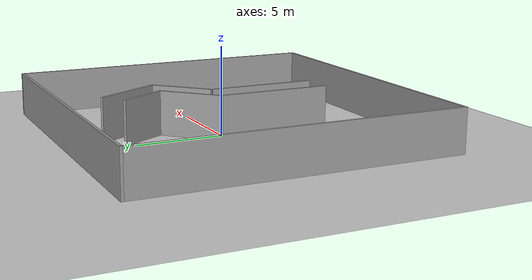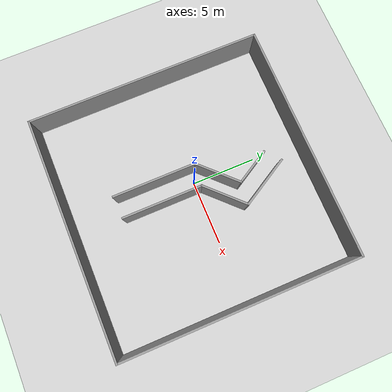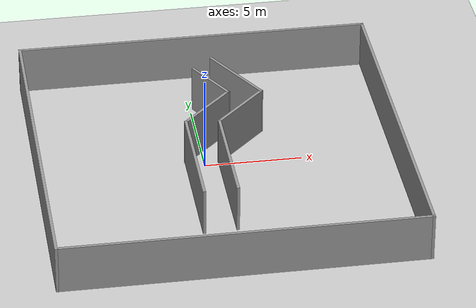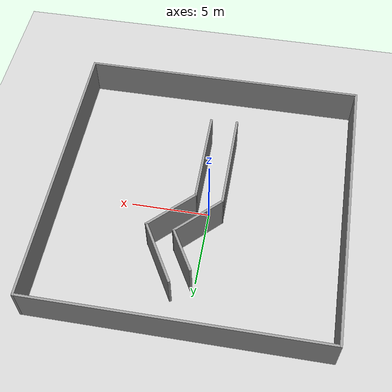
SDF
<sdf version="1.7">
 <world name="default">
  <light name="sun" type="directional">
   <pose>0 0 10 0 -0 0</pose>
   <diffuse>0.8 0.8 0.8 1</diffuse>
   <specular>0.2 0.2 0.2 1</specular>
   <attenuation>
    <range>1000</range>
    <constant>0.9</constant>
    <linear>0.01</linear>
    <quadratic>0.001</quadratic>
   </attenuation>
   <direction>-0.5 0.1 -0.9</direction>
   <spot><inner_angle>0</inner_angle><outer_angle>0</outer_angle><falloff>0</falloff></spot>
  </light>
  <model name="ground_plane">
   <static>1</static>
   <link name="link">
    <collision name="collision">
     <geometry><plane><normal>0 0 1</normal><size>100 100</size></plane></geometry>
     <surface>
      <contact><collide_bitmask>65535</collide_bitmask></contact>
      <friction><ode><mu>100</mu><mu2>50</mu2></ode></friction>
     </surface>
    </collision>
    <visual name="visual">
     <cast_shadows>0</cast_shadows>
     <geometry><plane><normal>0 0 1</normal><size>100 100</size></plane></geometry>
     <material>
      <script><uri>file://media/materials/scripts/gazebo.material</uri><name>Gazebo/Grey</name></script>
     </material>
    </visual>
   </link>
  </model>
  <gravity>0 0 -9.8</gravity>
  <magnetic_field>6e-06 2.3e-05 -4.2e-05</magnetic_field>
  <atmosphere type="adiabatic"/>
  <physics type="ode">
   <max_step_size>0.001</max_step_size>
   <real_time_factor>1</real_time_factor>
   <real_time_update_rate>1000</real_time_update_rate>
  </physics>
  <scene><ambient>0.4 0.4 0.4 1</ambient><background>0.7 0.7 0.7 1</background><shadows>1</shadows></scene>
  <spherical_coordinates>
   <surface_model>EARTH_WGS84</surface_model>
   <latitude_deg>0</latitude_deg>
   <longitude_deg>0</longitude_deg>
   <elevation>0</elevation>
   <heading_deg>0</heading_deg>
  </spherical_coordinates>
  <model name="thin_wall">
   <pose>0.591145 -0.536831 0 0 -0 0</pose>
   <link name="Wall_12">
    <collision name="Wall_12_Collision">
     <geometry><box><size>18.5 0.15 2.5</size></box></geometry>
     <pose>0 0 1.25 0 -0 0</pose>
    </collision>
    <visual name="Wall_12_Visual">
     <pose>0 0 1.25 0 -0 0</pose>
     <geometry><box><size>18.5 0.15 2.5</size></box></geometry>
     <material>
      <script><uri>file://media/materials/scripts/gazebo.material</uri><name>Gazebo/Grey</name></script>
      <ambient>1 1 1 1</ambient>
     </material>
     <meta><layer>0</layer></meta>
    </visual>
    <pose>-9.175 0 0 0 -0 -1.5708</pose>
   </link>
   <link name="Wall_13">
    <collision name="Wall_13_Collision">
     <geometry><box><size>18.5 0.15 2.5</size></box></geometry>
     <pose>0 0 1.25 0 -0 0</pose>
    </collision>
    <visual name="Wall_13_Visual">
     <pose>0 0 1.25 0 -0 0</pose>
     <geometry><box><size>18.5 0.15 2.5</size></box></geometry>
     <material>
      <script><uri>file://media/materials/scripts/gazebo.material</uri><name>Gazebo/Grey</name></script>
      <ambient>1 1 1 1</ambient>
     </material>
     <meta><layer>0</layer></meta>
    </visual>
    <pose>0 -9.175 0 0 -0 0</pose>
   </link>
   <link name="Wall_14">
    <collision name="Wall_14_Collision">
     <geometry><box><size>18.5 0.15 2.5</size></box></geometry>
     <pose>0 0 1.25 0 -0 0</pose>
    </collision>
    <visual name="Wall_14_Visual">
     <pose>0 0 1.25 0 -0 0</pose>
     <geometry><box><size>18.5 0.15 2.5</size></box></geometry>
     <material>
      <script><uri>file://media/materials/scripts/gazebo.material</uri><name>Gazebo/Grey</name></script>
      <ambient>1 1 1 1</ambient>
     </material>
     <meta><layer>0</layer></meta>
    </visual>
    <pose>9.175 0 0 0 -0 1.5708</pose>
   </link>
   <link name="Wall_15">
    <collision name="Wall_15_Collision">
     <geometry><box><size>18.5 0.15 2.5</size></box></geometry>
     <pose>0 0 1.25 0 -0 0</pose>
    </collision>
    <visual name="Wall_15_Visual">
     <pose>0 0 1.25 0 -0 0</pose>
     <geometry><box><size>18.5 0.15 2.5</size></box></geometry>
     <material>
      <script><uri>file://media/materials/scripts/gazebo.material</uri><name>Gazebo/Grey</name></script>
      <ambient>1 1 1 1</ambient>
     </material>
     <meta><layer>0</layer></meta>
    </visual>
    <pose>0 9.175 0 0 -0 3.14159</pose>
   </link>
   <link name="Wall_17">
    <collision name="Wall_17_Collision">
     <geometry><box><size>6.5 0.15 2.5</size></box></geometry>
     <pose>0 0 1.25 0 -0 0</pose>
    </collision>
    <visual name="Wall_17_Visual">
     <pose>0 0 1.25 0 -0 0</pose>
     <geometry><box><size>6.5 0.15 2.5</size></box></geometry>
     <material>
      <script><uri>file://media/materials/scripts/gazebo.material</uri><name>Gazebo/Grey</name></script>
      <ambient>1 1 1 1</ambient>
     </material>
     <meta><layer>0</layer></meta>
    </visual>
    <pose>-1.4946 -2.21882 0 0 -0 1.5708</pose>
   </link>
   <link name="Wall_18">
    <collision name="Wall_18_Collision">
     <geometry><box><size>3.75 0.15 2.5</size></box></geometry>
     <pose>0 0 1.25 0 -0 0</pose>
    </collision>
    <visual name="Wall_18_Visual">
     <pose>0 0 1.25 0 -0 0</pose>
     <geometry><box><size>3.75 0.15 2.5</size></box></geometry>
     <material>
      <script><uri>file://media/materials/scripts/gazebo.material</uri><name>Gazebo/Grey</name></script>
      <ambient>1 1 1 1</ambient>
     </material>
     <meta><layer>0</layer></meta>
    </visual>
    <pose>-0.221804 2.22897 0 0 -0 0.785398</pose>
   </link>
   <link name="Wall_19">
    <collision name="Wall_19_Collision">
     <geometry><box><size>3 0.15 2.5</size></box></geometry>
     <pose>0 0 1.25 0 -0 0</pose>
    </collision>
    <visual name="Wall_19_Visual">
     <pose>0 0 1.25 0 -0 0</pose>
     <geometry><box><size>3 0.15 2.5</size></box></geometry>
     <material>
      <script><uri>file://media/materials/scripts/gazebo.material</uri><name>Gazebo/Grey</name></script>
      <ambient>1 1 1 1</ambient>
     </material>
     <meta><layer>0</layer></meta>
    </visual>
    <pose>0.338488 4.73585 0 0 -0 2.0944</pose>
   </link>
   <link name="Wall_22">
    <collision name="Wall_22_Collision">
     <geometry><box><size>6.25 0.15 2.5</size></box></geometry>
     <pose>0 0 1.25 0 -0 0</pose>
    </collision>
    <visual name="Wall_22_Visual">
     <pose>0 0 1.25 0 -0 0</pose>
     <geometry><box><size>6.25 0.15 2.5</size></box></geometry>
     <material>
      <script><uri>file://media/materials/scripts/gazebo.material</uri><name>Gazebo/Grey</name></script>
      <ambient>1 1 1 1</ambient>
     </material>
     <meta><layer>0</layer></meta>
    </visual>
    <pose>0.204538 -2.26291 0 0 -0 1.5708</pose>
   </link>
   <link name="Wall_23">
    <collision name="Wall_23_Collision">
     <geometry><box><size>3.75 0.15 2.5</size></box></geometry>
     <pose>0 0 1.25 0 -0 0</pose>
    </collision>
    <visual name="Wall_23_Visual">
     <pose>0 0 1.25 0 -0 0</pose>
     <geometry><box><size>3.75 0.15 2.5</size></box></geometry>
     <material>
      <script><uri>file://media/materials/scripts/gazebo.material</uri><name>Gazebo/Grey</name></script>
      <ambient>1 1 1 1</ambient>
     </material>
     <meta><layer>0</layer></meta>
    </visual>
    <pose>1.47733 2.05988 0 0 -0 0.785398</pose>
   </link>
   <link name="Wall_24">
    <collision name="Wall_24_Collision">
     <geometry><box><size>4.25 0.15 2.5</size></box></geometry>
     <pose>0 0 1.25 0 -0 0</pose>
    </collision>
    <visual name="Wall_24_Visual">
     <pose>0 0 1.25 0 -0 0</pose>
     <geometry><box><size>4.25 0.15 2.5</size></box></geometry>
     <material>
      <script><uri>file://media/materials/scripts/gazebo.material</uri><name>Gazebo/Grey</name></script>
      <ambient>1 1 1 1</ambient>
     </material>
     <meta><layer>0</layer></meta>
    </visual>
    <pose>1.72512 5.10803 0 0 -0 2.0944</pose>
   </link>
   <static>1</static>
  </model>
 </world>
</sdf>
